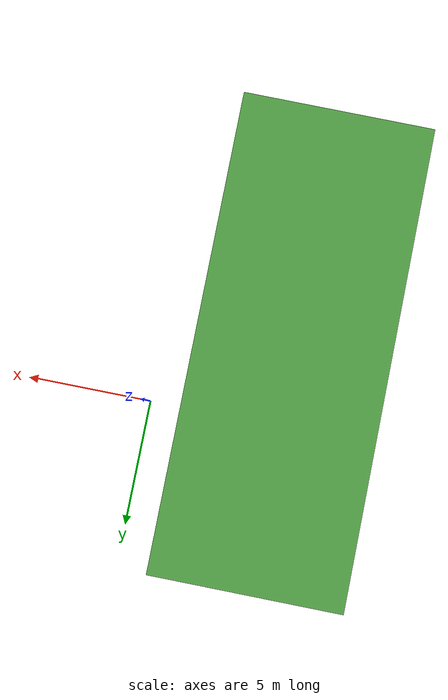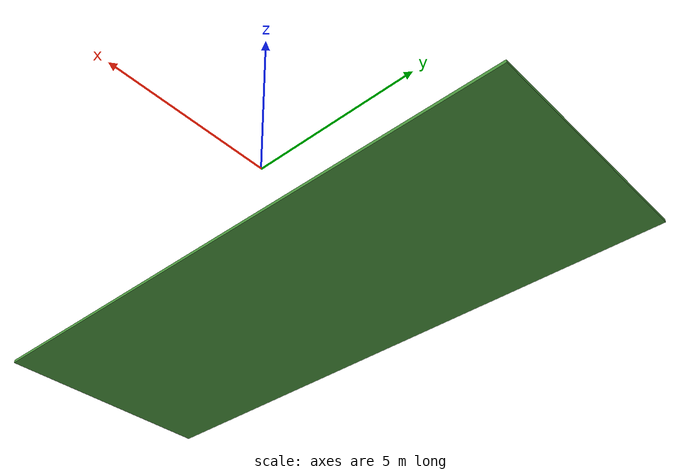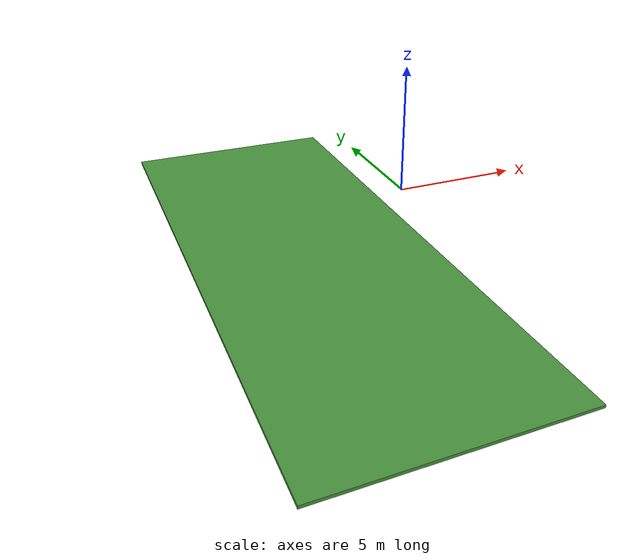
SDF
<?xml version='1.0'?>
<sdf version='1.6'>
  <model name='grass'>
    <pose frame=''>-5.216 -3.221 0 0 -0 0</pose>
    <link name='grass_1'>
      <collision name='grass_1_Collision'>
        <geometry>
          <box>
            <size>8 20 0.1</size>
          </box>
        </geometry>
        <pose frame=''>0 0 0 0 0 0</pose>
      </collision>
      <visual name='grass_1_Visual'>
        <pose frame=''>0 0 0 0 0 0</pose>
        <geometry>
          <box>
            <size>8 20 0.1</size>
          </box>
        </geometry>
        <material>
          <script>
            <uri>file://media/materials/scripts/gazebo.material</uri>
            <name>Gazebo/Grass</name>
          </script>
          <ambient>1 1 1 1</ambient>
        </material>
      </visual>
      <pose frame=''>0 0 0 0 -0 0</pose>
    </link>
    <static>1</static>
  </model>
</sdf>
